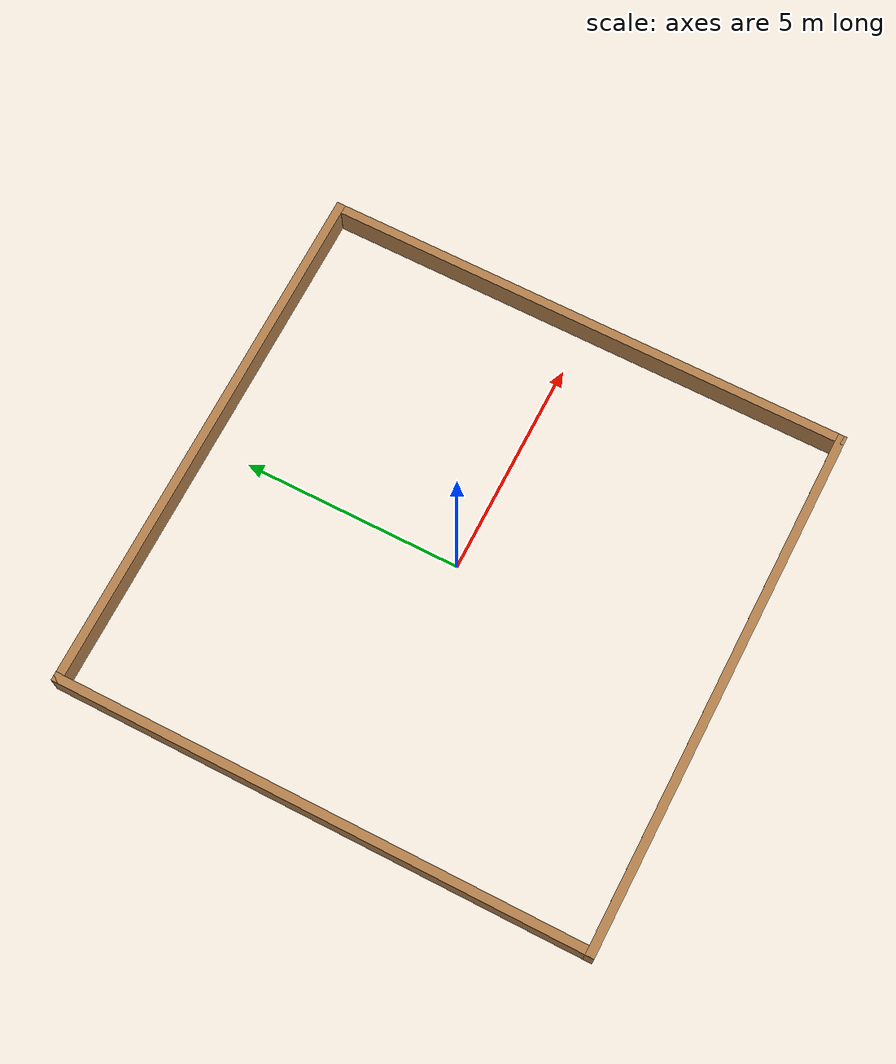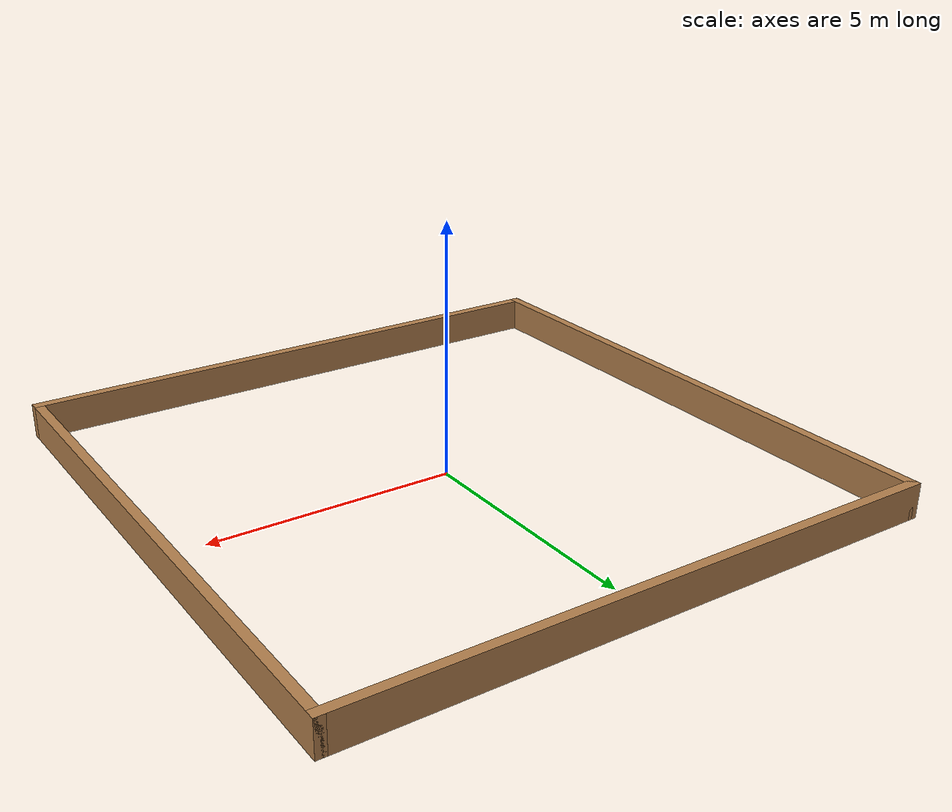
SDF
<sdf version="1.4">
 <world name="default">
  <scene>
   <ambient>0.4 0.4 0.4 1</ambient>
   <background>0.7 0.7 0.7 1</background>
   <shadows>true</shadows>
   <sky><clouds><speed>15</speed></clouds></sky>
  </scene>
  <include><uri>model://sun</uri></include>
  <include><uri>model://square2</uri></include>
  <physics type="ode">
   <real_time_update_rate>1000.0</real_time_update_rate>
   <max_step_size>0.001</max_step_size>
   <real_time_factor>1</real_time_factor>
   <ode>
    <solver>
     <type>quick</type>
     <iters>150</iters>
     <precon_iters>0</precon_iters>
     <sor>1.400000</sor>
     <use_dynamic_moi_rescaling>1</use_dynamic_moi_rescaling>
    </solver>
    <constraints>
     <cfm>0.00001</cfm>
     <erp>0.2</erp>
     <contact_max_correcting_vel>2000.000000</contact_max_correcting_vel>
     <contact_surface_layer>0.01000</contact_surface_layer>
    </constraints>
   </ode>
  </physics>
 </world>
</sdf>

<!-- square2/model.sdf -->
<sdf version='1.7'>
  <model name='square2'>
    <pose>0 0 0 0 -0 0</pose>
    <link name='Wall_0'>
      <collision name='Wall_0_Collision'>
        <geometry>
          <box>
            <size>12.2 0.2 0.7</size>
          </box>
        </geometry>
        <pose>0 0 0.35 0 -0 0</pose>
      </collision>
      <visual name='Wall_0_Visual'>
        <pose>0 0 0.35 0 -0 0</pose>
        <geometry>
          <box>
            <size>12.2 0.2 0.7</size>
          </box>
        </geometry>
        <material>
          <script>
            <uri>file://media/materials/scripts/gazebo.material</uri>
            <name>Gazebo/Wood</name>
          </script>
          <ambient>1 1 1 1</ambient>
        </material>
        <meta>
          <layer>0</layer>
        </meta>
      </visual>
      <pose>-6 0 0 0 -0 1.5708</pose>
    </link>
    <link name='Wall_1'>
      <collision name='Wall_1_Collision'>
        <geometry>
          <box>
            <size>12.2 0.2 0.7</size>
          </box>
        </geometry>
        <pose>0 0 0.35 0 -0 0</pose>
      </collision>
      <visual name='Wall_1_Visual'>
        <pose>0 0 0.35 0 -0 0</pose>
        <geometry>
          <box>
            <size>12.2 0.2 0.7</size>
          </box>
        </geometry>
        <material>
          <script>
            <uri>file://media/materials/scripts/gazebo.material</uri>
            <name>Gazebo/Wood</name>
          </script>
          <ambient>1 1 1 1</ambient>
        </material>
        <meta>
          <layer>0</layer>
        </meta>
      </visual>
      <pose>0 6 0 0 -0 0</pose>
    </link>
    <link name='Wall_2'>
      <collision name='Wall_2_Collision'>
        <geometry>
          <box>
            <size>12.2 0.2 0.7</size>
          </box>
        </geometry>
        <pose>0 0 0.35 0 -0 0</pose>
      </collision>
      <visual name='Wall_2_Visual'>
        <pose>0 0 0.35 0 -0 0</pose>
        <geometry>
          <box>
            <size>12.2 0.2 0.7</size>
          </box>
        </geometry>
        <material>
          <script>
            <uri>file://media/materials/scripts/gazebo.material</uri>
            <name>Gazebo/Wood</name>
          </script>
          <ambient>1 1 1 1</ambient>
        </material>
        <meta>
          <layer>0</layer>
        </meta>
      </visual>
      <pose>6 0 0 0 -0 -1.5708</pose>
    </link>
    <link name='Wall_3'>
      <collision name='Wall_3_Collision'>
        <geometry>
          <box>
            <size>12.2 0.2 0.7</size>
          </box>
        </geometry>
        <pose>0 0 0.35 0 -0 0</pose>
      </collision>
      <visual name='Wall_3_Visual'>
        <pose>0 0 0.35 0 -0 0</pose>
        <geometry>
          <box>
            <size>12.2 0.2 0.7</size>
          </box>
        </geometry>
        <material>
          <script>
            <uri>file://media/materials/scripts/gazebo.material</uri>
            <name>Gazebo/Wood</name>
          </script>
          <ambient>1 1 1 1</ambient>
        </material>
        <meta>
          <layer>0</layer>
        </meta>
      </visual>
      <pose>0 -6 0 0 -0 3.14159</pose>
    </link>
    <static>1</static>
  </model>
</sdf>
